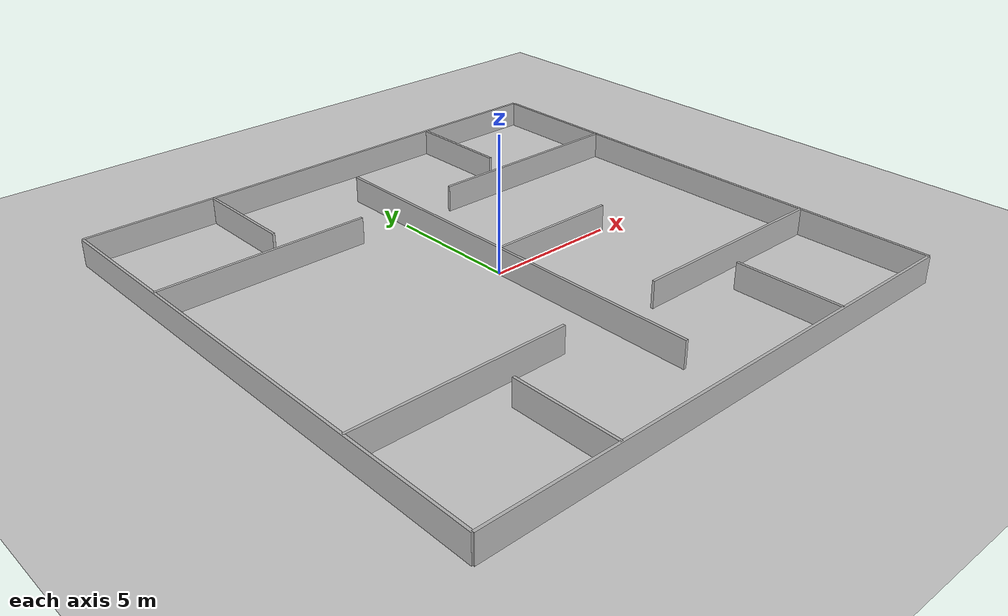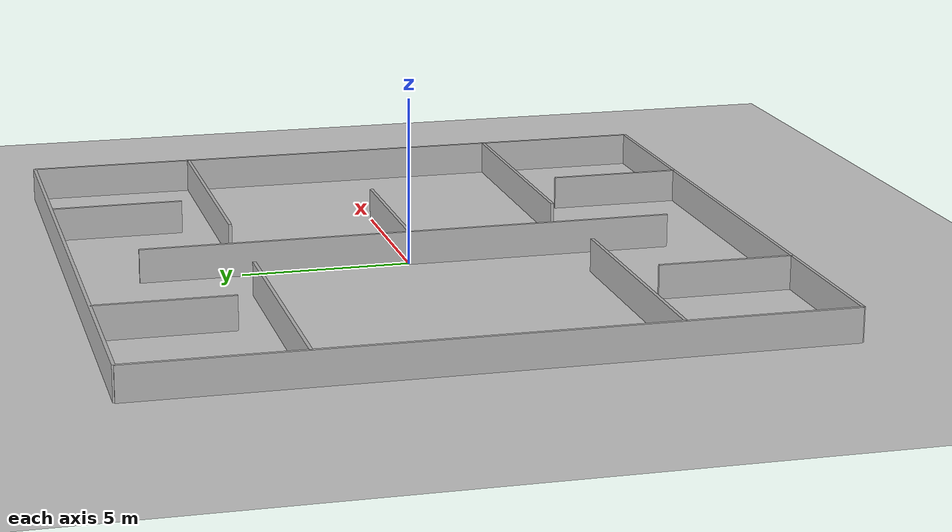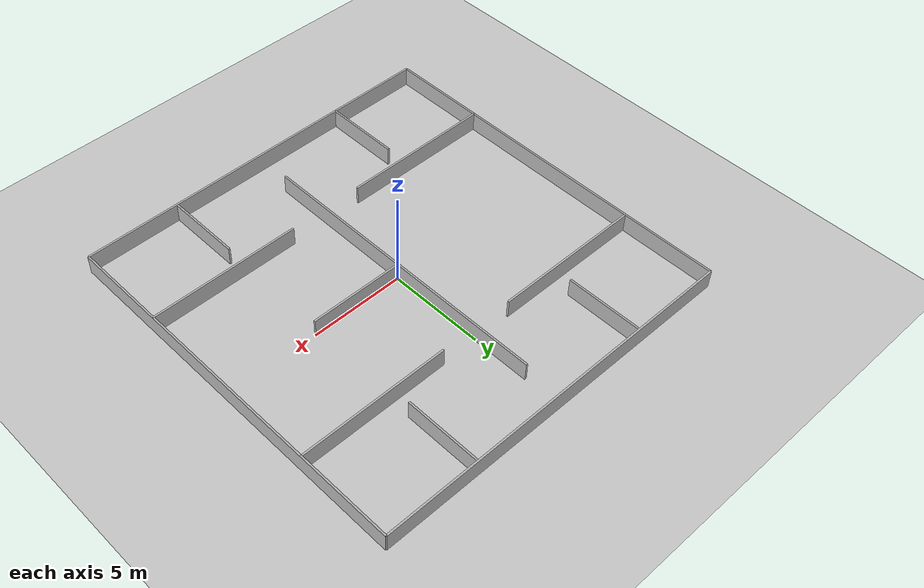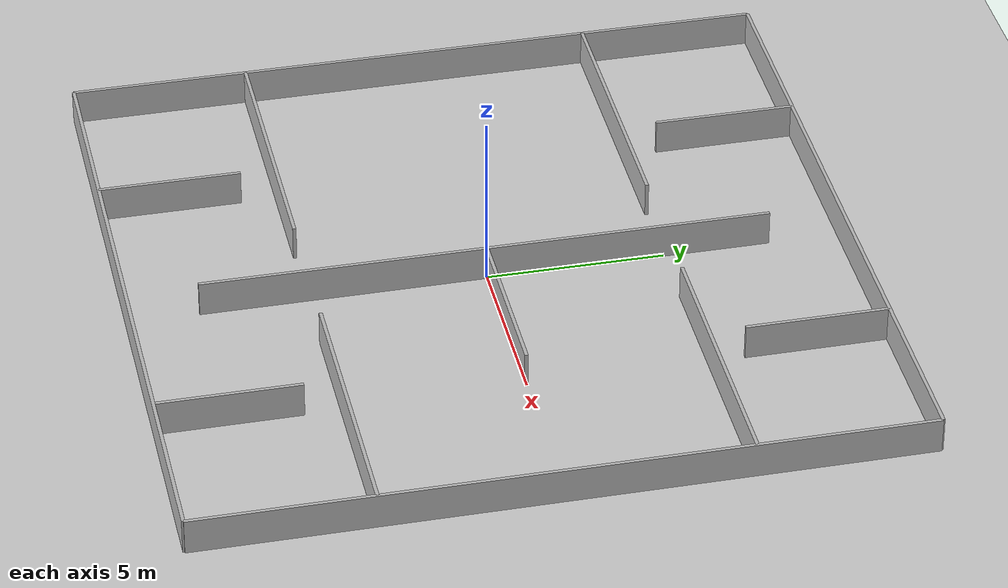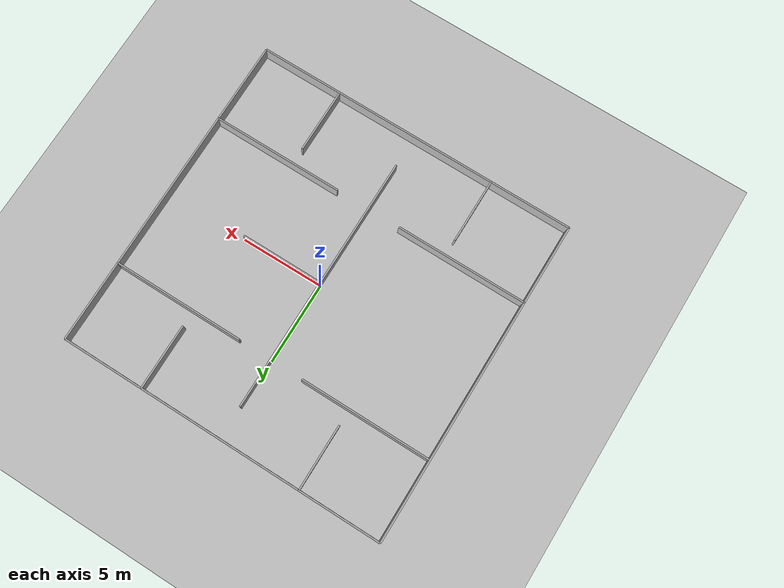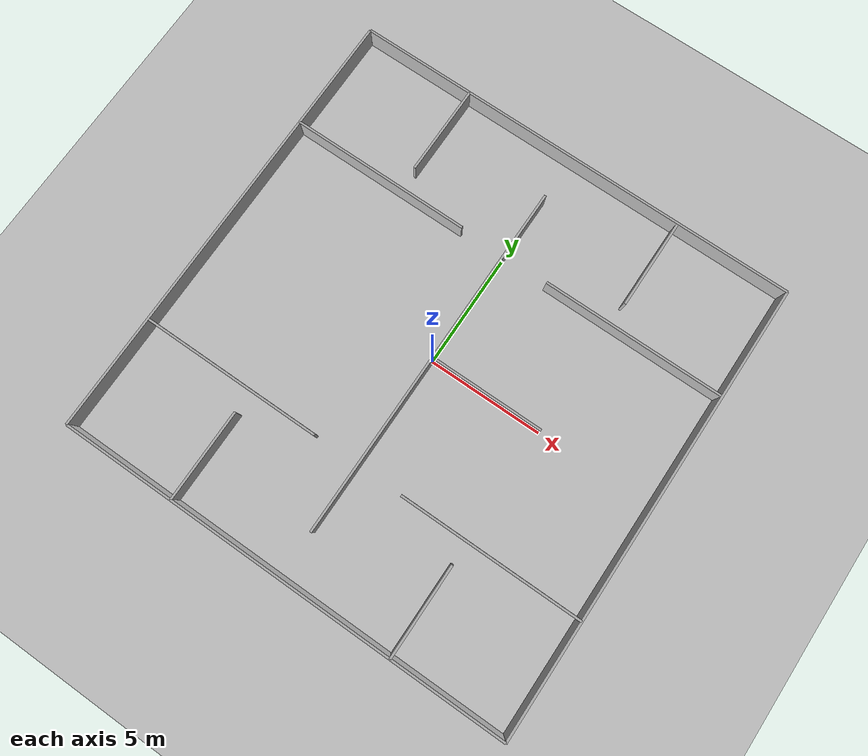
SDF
<?xml version="1.0" ?>
<sdf version="1.8">
<!-- TOO BIG. current world resized by 50% A simple maze world for tag team-->

  <world name="simple_maze">
    <!--Physics and plugins copied from turtlebot3_world.world-->
    <physics type="ode">
      <real_time_update_rate>1000.0</real_time_update_rate>
      <max_step_size>0.001</max_step_size>
      <real_time_factor>1</real_time_factor>
      <ode>
        <solver>
          <type>quick</type>
          <iters>150</iters>
          <precon_iters>0</precon_iters>
          <sor>1.400000</sor>
          <use_dynamic_moi_rescaling>1</use_dynamic_moi_rescaling>
        </solver>
        <constraints>
          <cfm>0.00001</cfm>
          <erp>0.2</erp>
          <contact_max_correcting_vel>2000.000000</contact_max_correcting_vel>
          <contact_surface_layer>0.01000</contact_surface_layer>
        </constraints>
      </ode>
    </physics>
    <plugin
      filename="gz-sim-physics-system"
      name="gz::sim::systems::Physics">
    </plugin>
    <plugin
      filename="gz-sim-user-commands-system"
      name="gz::sim::systems::UserCommands">
    </plugin>
    <plugin
      filename="gz-sim-scene-broadcaster-system"
      name="gz::sim::systems::SceneBroadcaster">
    </plugin>
    <plugin
      filename="gz-sim-sensors-system"
      name="gz::sim::systems::Sensors">
      <render_engine>ogre2</render_engine>
    </plugin>
    <plugin
      filename="gz-sim-imu-system"
      name="gz::sim::systems::Imu">
    </plugin>
    <include>
      <uri>https://fuel.gazebosim.org/1.0/OpenRobotics/models/Sun</uri>
    </include>
    <include>
      <uri>https://fuel.gazebosim.org/1.0/OpenRobotics/models/Ground Plane</uri>
    </include>

    <model name="maze_walls">
      <static>1</static>

      <link name="wall_north">
        <pose>0 10 0.5 0 0 0</pose>
        <visual name="visual">
          <geometry><box><size>20 0.1 1</size></box></geometry>
        </visual>
        <collision name="collision">
          <geometry><box><size>20 0.1 1</size></box></geometry>
        </collision>
      </link>

      <link name="wall_south">
        <pose>0 -10 0.5 0 0 0</pose>
        <visual name="visual">
          <geometry><box><size>20 0.1 1</size></box></geometry>
        </visual>
        <collision name="collision">
          <geometry><box><size>20 0.1 1</size></box></geometry>
        </collision>
      </link>

      <link name="wall_east">
        <pose>10 0 0.5 0 0 0</pose>
        <visual name="visual">
          <geometry><box><size>0.1 20 1</size></box></geometry>
        </visual>
        <collision name="collision">
          <geometry><box><size>0.1 20 1</size></box></geometry>
        </collision>
      </link>

      <link name="wall_west">
        <pose>-10 0 0.5 0 0 0</pose>
        <visual name="visual">
          <geometry><box><size>0.1 20 1</size></box></geometry>
        </visual>
        <collision name="collision">
          <geometry><box><size>0.1 20 1</size></box></geometry>
        </collision>
      </link>

      <link name="inner_wall_horiz_top_L"> <pose>-6 5 0.5 0 0 0</pose>
        <visual name="visual">
          <geometry><box><size>8 0.1 1</size></box></geometry>
        </visual>
        <collision name="collision">
          <geometry><box><size>8 0.1 1</size></box></geometry>
        </collision>
      </link>
      <link name="inner_wall_horiz_middle"> <pose> 2.5 0 0.5 0 0 0</pose>
        <visual name="visual">
          <geometry><box><size>5 0.1 1</size></box></geometry>
        </visual>
        <collision name="collision">
          <geometry><box><size>5 0.1 1</size></box></geometry>
        </collision>
      </link>

      <link name="inner_wall_horiz_top_R"> <pose>6 5 0.5 0 0 0</pose>
        <visual name="visual">
          <geometry><box><size>8 0.1 1</size></box></geometry>
        </visual>
        <collision name="collision">
          <geometry><box><size>8 0.1 1</size></box></geometry>
        </collision>
      </link>

      <link name="inner_wall_horiz_bottom_L"> <pose>-6 -5 0.5 0 0 0</pose>
        <visual name="visual">
          <geometry><box><size>8 0.1 1</size></box></geometry>
        </visual>
        <collision name="collision">
          <geometry><box><size>8 0.1 1</size></box></geometry>
        </collision>
      </link>
      <link name="inner_wall_horiz_bottom_R"> <pose>6 -5 0.5 0 0 0</pose>
        <visual name="visual">
          <geometry><box><size>8 0.1 1</size></box></geometry>
        </visual>
        <collision name="collision">
          <geometry><box><size>8 0.1 1</size></box></geometry>
        </collision>
      </link>

      <link name="inner_wall_vert_left_T"> <pose>-5 8 0.5 0 0 0</pose>
        <visual name="visual">
          <geometry><box><size>0.1 4 1</size></box></geometry>
        </visual>
        <collision name="collision">
          <geometry><box><size>0.1 4 1</size></box></geometry>
        </collision>
      </link>
      <link name="inner_wall_vert_left_B"> <pose>-5 -8 0.5 0 0 0</pose>
        <visual name="visual">
          <geometry><box><size>0.1 4 1</size></box></geometry>
        </visual>
        <collision name="collision">
          <geometry><box><size>0.1 4 1</size></box></geometry>
        </collision>
      </link>

      <link name="inner_wall_vert_middle"> <pose>0 0 0.5 0 0 0</pose>
        <visual name="visual">
          <geometry><box><size>0.1 16 1</size></box></geometry>
        </visual>
        <collision name="collision">
          <geometry><box><size>0.1 16 1</size></box></geometry>
        </collision>
      </link>

      <link name="inner_wall_vert_right_T"> <pose>5 8 0.5 0 0 0</pose>
        <visual name="visual">
          <geometry><box><size>0.1 4 1</size></box></geometry>
        </visual>
        <collision name="collision">
          <geometry><box><size>0.1 4 1</size></box></geometry>
        </collision>
      </link>
      <link name="inner_wall_vert_right_B"> <pose>5 -8 0.5 0 0 0</pose>
        <visual name="visual">
          <geometry><box><size>0.1 4 1</size></box></geometry>
        </visual>
        <collision name="collision">
          <geometry><box><size>0.1 4 1</size></box></geometry>
        </collision>
      </link>

    </model>

  </world>
</sdf>
